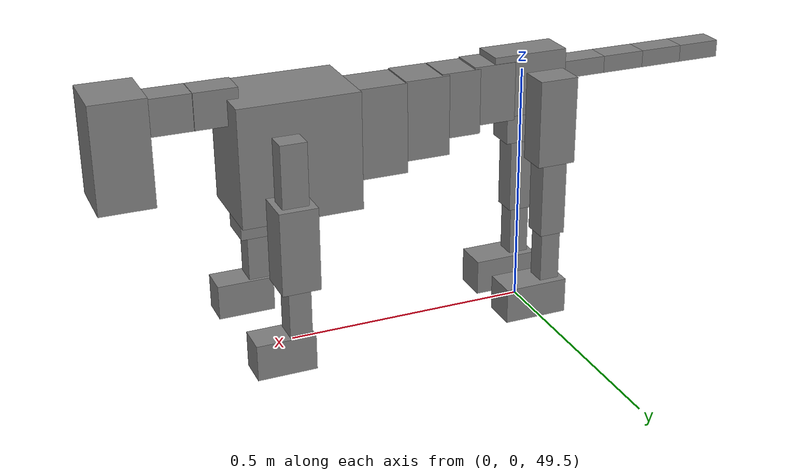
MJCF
<mujoco model="dog">

    <default>
        <joint armature="0.02" stiffness="1" damping="0.2" limited="true"/>
        <geom condim="3" friction="1 0.05 0.05" margin="0.01"/>
        <motor ctrllimited="true" ctrlrange="-1.0 1.0" forcelimited="true" gear="50"/>
    </default>

    <compiler inertiafromgeom="true" angle="radian"/>

    <option timestep="0.016" iterations="50" tolerance="1e-10" solver="Newton" jacobian="dense" cone="pyramidal"/>

    <size nconmax="20000" njmax="60000" nstack="5000000"/>
    <visual>
        <map force="0.1" zfar="30"/>
        <rgba haze="0.15 0.25 0.35 1"/>
        <quality shadowsize="2048"/>
        <global offwidth="800" offheight="800"/>
    </visual>

    <asset>
        <texture type="skybox" builtin="gradient" rgb1="0.3 0.5 0.7" rgb2="0 0 0" width="512" height="512"/>
        <texture name="texplane" type="2d" builtin="checker" rgb1=".2 .3 .4" rgb2=".1 0.15 0.2" width="512" height="512"
                 mark="cross" markrgb=".8 .8 .8"/>
        <texture name="texgeom" type="cube" builtin="flat" mark="cross" width="127" height="1278" rgb1="0.8 0.6 0.4"
                 rgb2="0.8 0.6 0.4" markrgb="1 1 1" random="0.01"/>

        <material name="matplane" reflectance="0.3" texture="texplane" texrepeat="1 1" texuniform="true"/>
        <material name="matgeom" texture="texgeom" texuniform="true" rgba="0.8 0.6 .4 1"/>
    </asset>

    <worldbody>
        <geom name="floor" pos="0 0 0" size="0 0 .25" type="plane" material="matplane" condim="3"/>

        <light directional="false" diffuse=".2 .2 .2" specular="0 0 0" pos="0 0 5" dir="0 0 -1" castshadow="false"/>
        <light mode="targetbodycom" target="torso" directional="false" diffuse=".8 .8 .8" specular="0.3 0.3 0.3"
               pos="0 0 4.0" dir="0 0 -1"/>

        <body name="root" pos="0 0 50">
            <freejoint name="root_1"/>
            <geom type="box" pos="0 0 -0.02" size="0.0774  0.0358  0.063" density="2030"/>

            <body name="spine1" pos="0.054 0 0">
                <joint name="spine1_y" axis="0 1 0" range="0 0.7" limited="true"/>
                <geom type="box" pos="0.02375 0 -0.03" size="0.04375  0.0375  0.05985" density="2030"/>

                <body name="spine2" pos="0.0612 0 0">
                    <joint name="spine2_y" axis="0 1 0" range="-0.15 0.15" limited="true"/>
                    <geom type="box" pos="0.03555  0  -0.04" size="0.04055  0.039  0.06615" density="2030"/>

                    <body name="spine3" pos="0.0730 0 0">
                        <joint name="spine3_y" axis="0 1 0" range="-0.15 0.15" limited="true"/>
                        <geom type="box" pos="0.03555  0  -0.057" size="0.04555  0.0445  0.081" density="2030"/>

                        <body name="spine4" pos="0.0780 0 0">
                            <joint name="spine4_y" axis="0 1 0" range="-0.15 0.15" limited="true"/>
                            <geom type="box" pos="0.05265  0  -0.07" size="0.05265  0.045  0.09135" density="2030"/>

                            <body name="torso" pos="0.1082 0 0">
                                <joint name="torso_y" axis="0 1 0" range="-0.15 0.15" limited="true"/>
                                <geom type="box" pos="0.11925  0  -0.085" size="0.11925  0.085  0.11745"
                                      density="2030"/>

                                <body name="neck1" pos="0.2160  0   0.0180">
                                    <joint name="neck1_y" axis="0 1 0" range="-1.2  -1" limited="true"/>
                                    <geom type="box" pos="0.0423  0  0" size="0.0423  0.03  0.036" density="2325"/>

                                    <body name="neck2" pos="0.0853  0  0">
                                        <joint name="neck2_y" axis="0 1 0" range="0.1  0" limited="true"/>
                                        <geom type="box" pos="0.0423  0  0" size="0.0423  0.03  0.036" density="2325"/>

                                        <body name="head" pos="0.0853  0  0">
                                            <joint name="head_y" axis="0 1 0" range="-0.3  -0.2" limited="true"/>
                                            <geom type="box" pos="0.0531  0  -0.055" size="0.0531  0.06  0.1044"
                                                  density="4030"/>

                                        </body>
                                    </body>
                                </body>

                                <body name="front_shoulder" pos="0.156  0   -0.0480">
                                    <joint name="front_shoulder_y" axis="0 1 0" range="-1 1.5" limited="true"/>
                                    <geom type="box" pos="0 0.13 -0.0483" size="0.0258  0.0220  0.0750" density="1158"/>
                                    <geom type="box" pos="0 -0.13 -0.0483" size="0.0258  0.0220  0.0750"
                                          density="1158"/>

                                    <body name="front_elbow" pos="0  0  -0.0966">
                                        <joint name="front_elbow_y" axis="0 1 0" range="-2 0" limited="true"/>
                                        <geom type="box" pos="0 0.13 -0.0826" size="0.0377  0.0385  0.0826"
                                              density="1081"/>
                                        <geom type="box" pos="0 -0.13 -0.0826" size="0.0377  0.0385  0.0826"
                                              density="1081"/>

                                        <body name="front_wrist" pos="0  0  -0.1652">
                                            <joint name="front_wrist_y" axis="0 1 0" range="-0.2 0" limited="true"/>
                                            <geom type="box" pos="0 0.13 -0.0559" size="0.0220  0.0244  0.0691"
                                                  density="1664"/>
                                            <geom type="box" pos="0 -0.13 -0.0559" size="0.0220  0.0244  0.0691"
                                                  density="1664"/>

                                            <body name="front_finger_end" pos="0  0  -0.1119">
                                                <joint name="front_finger_y" axis="0 1 0" range="-0.4 1"
                                                       limited="true"/>
                                                <geom type="box" pos="0.0319  0.13  -0.0212"
                                                      size="0.0585  0.0319  0.0362" density="1515"/>
                                                <geom type="box" pos="0.0319  -0.13  -0.0212"
                                                      size="0.0585  0.0319  0.0362" density="1515"/>

                                            </body>

                                        </body>
                                    </body>
                                </body>

                            </body>
                        </body>
                    </body>
                </body>
            </body>

            <body name="back_hip" pos="-0.03 0 -0.018">
                <joint name="back_hip_y" axis="0 1 0" range="-1.5 0.3" limited="true"/>
                <geom type="box" pos="0 0.07 -0.0663" size="0.0398  0.0312  0.0891" density="1154"/>
                <geom type="box" pos="0 -0.07 -0.0663" size="0.0398  0.0312  0.0891" density="1154"/>

                <body name="back_knee" pos="0  0  -0.1327">
                    <joint name="back_knee_y" axis="0 1 0" range="0 2.8" limited="true"/>
                    <geom type="box" pos="0 0.07 -0.0805" size="0.0264  0.0260  0.0960" density="1227"/>
                    <geom type="box" pos="0 -0.07 -0.0805" size="0.0264  0.0260  0.0960" density="1227"/>

                    <body name="back_ankle" pos="0  0  -0.1609">
                        <joint name="back_ankle_y" axis="0 1 0" range="-2.2 0" limited="true"/>
                        <geom type="box" pos="0 0.07 -0.0669" size="0.0207  0.0207  0.0781" density="1284"/>
                        <geom type="box" pos="0 -0.07 -0.0669" size="0.0207  0.0207  0.0781" density="1284"/>

                        <body name="back_toe_end" pos="0  0  -0.1337">
                            <joint name="back_toe_y" axis="0 1 0" range="-0.4 1" limited="true"/>
                            <geom type="box" pos="0.0364  0.07  -0.0219" size="0.0667  0.0364  0.0369" density="1515"/>
                            <geom type="box" pos="0.0364  -0.07  -0.0219" size="0.0667  0.0364  0.0369" density="1515"/>

                        </body>
                    </body>
                </body>
            </body>

            <body name="tail1" pos="-0.074 0 -0.006">
                <joint name="tail1_y" axis="0 1 0" range="-0.2 0.2" limited="true"/>
                <geom type="box" pos="-0.0536  0  0" size="0.045  0.025  0.0175" density="1587"/>

                <body name="tail2" pos="-0.09 0 0">
                    <joint name="tail2_y" axis="0 1 0" range="-0.2 0.2" limited="true"/>
                    <geom type="box" pos="-0.0536  0  0" size="0.045  0.025  0.0175" density="1587"/>

                    <body name="tail3" pos="-0.09 0 0">
                        <joint name="tail3_y" axis="0 1 0" range="-0.2 0.2" limited="true"/>
                        <geom type="box" pos="-0.0536  0  0" size="0.045  0.025  0.0175" density="1587"/>

                        <body name="tail4" pos="-0.09 0 0">
                            <joint name="tail4_y" axis="0 1 0" range="-0.2 0.2" limited="true"/>
                            <geom type="box" pos="-0.0536  0  0" size="0.045  0.025  0.0175" density="1587"/>

                        </body>
                    </body>
                </body>
            </body>
        </body>
    </worldbody>

    <actuator>
        <motor joint="spine1_y" forcerange="-150 150     "/>
        <motor joint="spine2_y" forcerange="-150 150     "/>
        <motor joint="spine3_y" forcerange="-150 150     "/>
        <motor joint="spine4_y" forcerange="-150 150     "/>
        <motor joint="torso_y" forcerange="-150 150     "/>
        <motor joint="neck1_y" forcerange="-100 100       "/>
        <motor joint="neck2_y" forcerange="-100 100       "/>
        <motor joint="head_y" forcerange="-150 150       "/>
        <motor joint="front_shoulder_y" forcerange="-103.32 143.42"/>
        <motor joint="front_elbow_y" forcerange="-197.09 183.26"/>
        <motor joint="front_wrist_y" forcerange="-53.42 141.96"/>
        <motor joint="front_finger_y" forcerange="-50.20 79.87"/>
        <motor joint="back_hip_y" forcerange="-343.48 273.17"/>
        <motor joint="back_knee_y" forcerange="-292.38 285.62"/>
        <motor joint="back_angle_y" forcerange="-75.99 155.72"/>
        <motor joint="back_toe_y" forcerange="-115.20 95.83"/>
        <motor joint="tail1_y" forcerange="-50 50     "/>
        <motor joint="tail2_y" forcerange="-50 50     "/>
        <motor joint="tail3_y" forcerange="-50 50     "/>
        <motor joint="tail4_y" forcerange="-50 50     "/>
    </actuator>
</mujoco>
